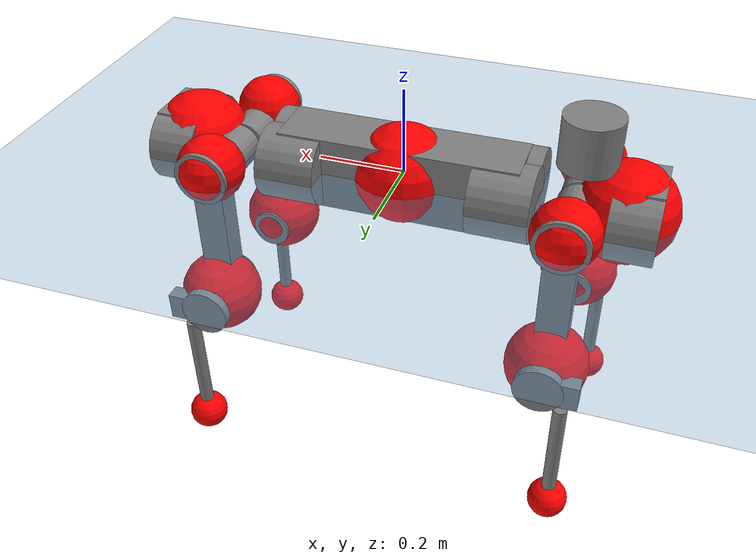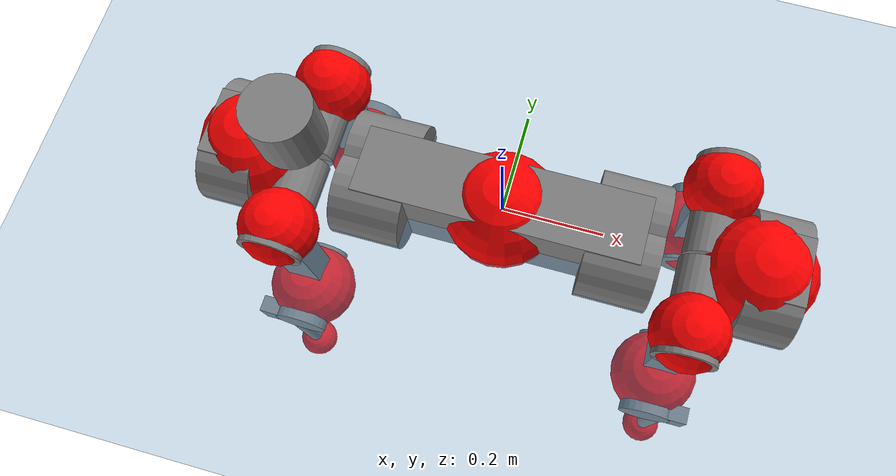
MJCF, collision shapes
<mujoco model="anymal_c">
  <compiler angle="radian" assetdir="assets" balanceinertia="true" inertiafromgeom="false"/>

  <option timestep="0.005" density="1.2" viscosity="2e-05"/>

  <size nkey="1"/>

  <visual>
    <quality shadowsize="8192"/>
    <map shadowclip="0.5"/>
  </visual>

  <default>
    <default class="/">
      <material specular="0" shininess="0.25"/>
      <geom contype="0" conaffinity="0" group="1" solref="-1000 -80"/>
      <site size="0.01 0.005 0.005" group="5"/>
      <general forcelimited="true" forcerange="-80 80" biastype="affine" gainprm="80" biasprm="0 -80 -2"/>
      <default class="anymal_c">
        <joint armature="0.01" damping="0.01" frictionloss="0.1"/>
        <default class="visual">
          <geom type="mesh" group="2"/>
          <default class="visual_zflip"/>
        </default>
        <default class="collision">
          <geom type="cylinder" group="3"/>
          <default class="foot">
            <geom size="0.03 0 0" type="sphere" condim="6" priority="1" friction="0.8 0.02 0.01" solimp="0.015 1 0.03"/>
          </default>
        </default>
      </default>
      <default class="reward_collision_sphere">
        <geom group="5" rgba="1 0 0 1"/>
      </default>
    </default>
  </default>

  <asset>
    <texture type="skybox" colorspace="auto" name="//unnamed_texture_0" builtin="gradient" rgb1="0.95 0.95 0.95" rgb2="0.95 0.95 0.95" width="100" height="600"/>
    <texture type="2d" colorspace="auto" name="texplane" builtin="checker" rgb1="0.345 0.575 0.748" rgb2="0.345 0.575 0.748" markrgb="1 1 1" width="512" height="512"/>
    <texture type="2d" colorspace="linear" name="base" file="base.png"/>
    <texture type="2d" colorspace="linear" name="top_shell" file="top_shell.png"/>
    <texture type="2d" colorspace="linear" name="bottom_shell" file="bottom_shell.png"/>
    <texture type="2d" colorspace="linear" name="remote" file="remote.png"/>
    <texture type="2d" colorspace="linear" name="hatch" file="hatch.png"/>
    <texture type="2d" colorspace="linear" name="handle" file="handle.png"/>
    <texture type="2d" colorspace="linear" name="face" file="face.png"/>
    <texture type="2d" colorspace="linear" name="battery" file="battery.png"/>
    <texture type="2d" colorspace="linear" name="lidar_cage" file="lidar_cage.png"/>
    <texture type="2d" colorspace="linear" name="depth_camera" file="depth_camera.png"/>
    <texture type="2d" colorspace="linear" name="wide_angle_camera" file="wide_angle_camera.png"/>
    <texture type="2d" colorspace="linear" name="lidar" file="lidar.png"/>
    <texture type="2d" colorspace="linear" name="drive" file="drive.png"/>
    <texture type="2d" colorspace="linear" name="hip_l" file="hip_l.png"/>
    <texture type="2d" colorspace="linear" name="shank_l" file="shank_l.png"/>
    <texture type="2d" colorspace="linear" name="foot" file="foot.png"/>
    <texture type="2d" colorspace="linear" name="thigh" file="thigh.png"/>
    <texture type="2d" colorspace="linear" name="shank_r" file="shank_r.png"/>
    <texture type="2d" colorspace="linear" name="hip_r" file="hip_r.png"/>
    <material name="MatPlane" class="/" texture="texplane" texuniform="true" texrepeat="2 2" specular="0.9" shininess="0.5"/>
    <material name="black_plastic" class="/" rgba="0.007 0.007 0.007 1"/>
    <material name="green" class="/" rgba="0.052 0.178 0.033 1"/>
    <material name="red" class="/" rgba="0.178 0.006 0.005 1"/>
    <material name="yellow" class="/" rgba="0.178 0.119 0.006 1"/>
    <material name="lwl" class="/" rgba="0.8 0.8 0.8 1"/>
    <material name="base" class="/" texture="base"/>
    <material name="top_shell" class="/" texture="top_shell"/>
    <material name="bottom_shell" class="/" texture="bottom_shell"/>
    <material name="hip_l" class="/" texture="hip_l"/>
    <material name="thigh" class="/" texture="thigh"/>
    <material name="shank_l" class="/" texture="shank_l"/>
    <material name="foot" class="/" texture="foot"/>
    <material name="hip_r" class="/" texture="hip_r"/>
    <material name="shank" class="/" texture="shank_r"/>
    <material name="hatch" class="/" texture="hatch"/>
    <material name="remote" class="/" texture="remote"/>
    <material name="handle" class="/" texture="handle"/>
    <material name="face" class="/" texture="face"/>
    <material name="depth_camera" class="/" texture="depth_camera"/>
    <material name="wide_angle_camera" class="/" texture="wide_angle_camera"/>
    <material name="battery" class="/" texture="battery"/>
    <material name="lidar_cage" class="/" texture="lidar_cage"/>
    <material name="lidar" class="/" texture="lidar"/>
    <material name="drive" class="/" texture="drive"/>
    <mesh name="base_0" class="/" file="base_0.obj"/>
    <mesh name="base_1" class="/" file="base_1.obj"/>
    <mesh name="base_2" class="/" file="base_2.obj"/>
    <mesh name="base_3" class="/" file="base_3.obj"/>
    <mesh name="base_4" class="/" file="base_4.obj"/>
    <mesh name="base_5" class="/" file="base_5.obj"/>
    <mesh name="top_shell" class="/" file="top_shell.obj"/>
    <mesh name="bottom_shell" class="/" file="bottom_shell.obj"/>
    <mesh name="remote" class="/" file="remote.obj"/>
    <mesh name="handle" class="/" file="handle.obj"/>
    <mesh name="face" class="/" file="face.obj"/>
    <mesh name="wide_angle_camera" class="/" file="wide_angle_camera.obj"/>
    <mesh name="depth_camera" class="/" file="depth_camera.obj"/>
    <mesh name="battery" class="/" file="battery.obj"/>
    <mesh name="lidar_cage" class="/" file="lidar_cage.obj"/>
    <mesh name="lidar" class="/" file="lidar.obj"/>
    <mesh name="drive" class="/" file="drive.obj"/>
    <mesh name="hip_l" class="/" file="hip_l.obj"/>
    <mesh name="thigh" class="/" file="thigh.obj"/>
    <mesh name="shank_l" class="/" file="shank_l.obj"/>
    <mesh name="foot" class="/" file="foot.obj"/>
    <mesh name="hip_r" class="/" file="hip_r.obj"/>
    <mesh name="hatch" class="/" file="hatch.obj"/>
    <mesh name="shank_r" class="/" file="shank_r.obj"/>
  </asset>

  <worldbody>
    <geom name="floor" class="/" size="100 100 0.125" type="plane" group="0" material="MatPlane"/>
    <light name="toplight_shadow" class="/" pos="0 0 5" dir="0.0990148 0.0990148 -0.990148" type="directional" ambient="0.04 0.04 0.04" diffuse="0.55 0.55 0.55" specular="0.12 0.12 0.12"/>
    <light name="toplight_fill" class="/" pos="0 0 5" dir="0.0990148 0.0990148 -0.990148" type="directional" castshadow="false" ambient="0.04 0.04 0.04" diffuse="0.3 0.3 0.3" specular="0.08 0.08 0.08"/>
    <body name="trunk" childclass="anymal_c" pos="0.000159047 -0.000375128 -0.00155342" quat="1 0.000103052 -0.000225569 -0.00013392">
      <inertial pos="0.00180304 0.000192864 0.0588362" quat="0.500488 0.508531 0.491302 0.49953" mass="16.4878" diaginertia="1.07903 0.0418907 0.415207"/>
      <joint name="//unnamed_joint_0" type="free" armature="0" damping="0" frictionloss="0"/>
      <geom name="//unnamed_geom_1" class="visual" material="green" mesh="base_0"/>
      <geom name="//unnamed_geom_2" class="visual" material="yellow" mesh="base_1"/>
      <geom name="//unnamed_geom_3" class="visual" material="red" mesh="base_2"/>
      <geom name="//unnamed_geom_4" class="visual" material="black_plastic" mesh="base_3"/>
      <geom name="//unnamed_geom_5" class="visual" material="lwl" mesh="base_4"/>
      <geom name="//unnamed_geom_6" class="visual" material="base" mesh="base_5"/>
      <geom name="trunk_1" class="collision" size="0.273602 0.0660419 0.0849111" type="box"/>
      <geom name="trunk_2" class="collision" size="0.0849111 0.0684006" pos="0.240059 0.0408133 0" quat="0.707107 0 0.707107 0"/>
      <geom name="trunk_3" class="collision" size="0.0849111 0.0684006" pos="-0.240059 0.0408133 0" quat="0.707107 0 0.707107 0"/>
      <geom name="trunk_4" class="collision" size="0.0849111 0.0684006" pos="0.240059 -0.0408133 0" quat="0.707107 0 0.707107 0"/>
      <geom name="trunk_5" class="collision" size="0.0849111 0.0684006" pos="-0.240059 -0.0408133 0" quat="0.707107 0 0.707107 0"/>
      <geom name="//unnamed_geom_12" class="visual" material="top_shell" mesh="top_shell"/>
      <geom name="//unnamed_geom_13" class="visual" material="bottom_shell" mesh="bottom_shell"/>
      <geom name="//unnamed_geom_14" class="visual" material="remote" mesh="remote"/>
      <geom name="//unnamed_geom_15" class="visual" material="handle" mesh="handle"/>
      <geom name="//unnamed_geom_16" class="visual" pos="0.457492 0 0" quat="1 0 0 0" material="face" mesh="face"/>
      <geom name="trunk_6" class="collision" size="0.0518901 0.0660419 0.0849111" pos="0.518196 0 0" type="box"/>
      <geom name="//unnamed_geom_18" class="collision" size="0.0849111 0.0518901" pos="0.518196 0.0408133 0" quat="0.707107 0 0.707107 0"/>
      <geom name="//unnamed_geom_19" class="collision" size="0.0849111 0.0518901" pos="0.518196 -0.0408133 0" quat="0.707107 0 0.707107 0"/>
      <geom name="//unnamed_geom_20" class="visual" pos="0.509534 0 -0.0336963" quat="0.965926 0 0.258819 0" material="depth_camera" mesh="depth_camera"/>
      <geom name="//unnamed_geom_21" class="visual" pos="0.566208 0 0.0171197" material="wide_angle_camera" mesh="wide_angle_camera"/>
      <geom name="//unnamed_geom_22" class="visual_zflip" pos="-0.457492 0 0" quat="0 0 0 1" material="face" mesh="face"/>
      <geom name="trunk_7" class="collision" size="0.0518901 0.0660419 0.0849111" pos="-0.518196 0 0" quat="0 0 0 1" type="box"/>
      <geom name="//unnamed_geom_24" class="collision" size="0.0849111 0.0518901" pos="-0.518196 -0.0408133 0" quat="0 -0.707107 0 0.707107"/>
      <geom name="//unnamed_geom_25" class="collision" size="0.0849111 0.0518901" pos="-0.518196 0.0408133 0" quat="0 -0.707107 0 0.707107"/>
      <geom name="//unnamed_geom_26" class="visual" pos="-0.509534 0 -0.0336963" quat="0 -0.258819 0 0.965926" material="depth_camera" mesh="depth_camera"/>
      <geom name="//unnamed_geom_27" class="visual_zflip" pos="-0.566208 0 0.0171197" quat="0 0 0 1" material="wide_angle_camera" mesh="wide_angle_camera"/>
      <geom name="//unnamed_geom_28" class="visual" material="battery" mesh="battery"/>
      <geom name="//unnamed_geom_29" class="visual" pos="0 0.0377492 0.0329185" quat="0.683013 -0.183013 0.183013 0.683013" material="depth_camera" mesh="depth_camera"/>
      <geom name="//unnamed_geom_30" class="visual" pos="0 -0.0377492 0.0329185" quat="0.683013 0.183013 0.183013 -0.683013" material="depth_camera" mesh="depth_camera"/>
      <geom name="//unnamed_geom_31" class="visual" pos="-0.401754 0 0.0840547" quat="1 0 0 0" material="lidar_cage" mesh="lidar_cage"/>
      <geom name="trunk_8" class="collision" size="0.0660419 0.0566074" pos="-0.401754 0 0.152671"/>
      <geom name="//unnamed_geom_33" class="visual" pos="-0.401754 -0.000204558 0.16262" quat="0.707107 0 0 -0.707107" material="lidar" mesh="lidar"/>
      <geom name="//unnamed_geom_34" class="visual" pos="0.331005 0.0608361 -9.66962e-09" quat="0.258819 0.965926 0 0" material="drive" mesh="drive"/>
      <geom name="//unnamed_geom_35" class="visual" pos="0.331005 -0.0608361 9.66962e-09" quat="0.258819 -0.965926 0 0" material="drive" mesh="drive"/>
      <geom name="//unnamed_geom_36" class="visual" pos="-0.331005 0.0608361 9.66962e-09" quat="0 0 0.965926 -0.258819" material="drive" mesh="drive"/>
      <geom name="//unnamed_geom_37" class="visual" pos="-0.331005 -0.0608361 -9.66962e-09" quat="0 0 -0.965926 -0.258819" material="drive" mesh="drive"/>
      <geom name="//unnamed_geom_38" class="visual" pos="0.128031 0 0.0834829" quat="1 0 0 0" material="hatch" mesh="hatch"/>
      <geom name="//unnamed_geom_39" class="reward_collision_sphere" size="0.113215"/>
      <geom name="//unnamed_geom_40" class="reward_collision_sphere" size="0.113215" pos="0.496674 0 0"/>
      <geom name="//unnamed_geom_41" class="reward_collision_sphere" size="0.113215" pos="-0.496674 0 0"/>
      <site name="imu" pos="0.28406 -0.000279578 0.0519762" size="0.00943456"/>
      <camera name="track" pos="0 -1.16609 0" quat="0.707107 0.707107 0 0" mode="trackcom"/>
      <camera name="ego_camera" pos="0.496674 0 -0.0457441" quat="-0.5 -0.5 0.5 0.5"/>
      <body name="LF_HIP" pos="0.332886 0.0589473 0.00019794" quat="0.259238 0.965813 -0.000845751 0.000914134">
        <inertial pos="0.0621871 -0.0112384 -0.00902923" quat="-0.125135 0.717231 -0.132419 0.672596" mass="2.37484" diaginertia="0.00979207 0.000338048 0.00671151"/>
        <joint name="LF_HAA" pos="0 0 0" axis="0.999976 -0.00476964 -0.00508298" range="-0.715179 0.535233" armature="0.00887272" damping="0.016454" frictionloss="0.0864524"/>
        <geom name="//unnamed_geom_42" class="visual" pos="0 -0.00056882 9.34282e-05" quat="0.258819 -0.965926 0 0" material="hip_l" mesh="hip_l"/>
        <geom name="//unnamed_geom_43" class="visual" pos="0.0661128 -0.0734534 -0.0465545" quat="0.183013 -0.683013 0.683013 0.183013" material="drive" mesh="drive"/>
        <geom name="//unnamed_geom_44" class="collision" size="0.0471728 0.0660419" pos="0.0661128 -0.00697313 -0.00789657" quat="-0.353553 -0.612372 0.612372 -0.353553"/>
        <body name="LF_THIGH" pos="0.0665429 -0.044109 -0.0479472" quat="0.182932 -0.683027 0.682987 0.183136">
          <inertial pos="0.0370488 -0.000407494 -0.281537" quat="0.994112 0.00338663 -0.0767378 0.0764245" mass="2.63311" diaginertia="0.0496943 0.00200865 0.00798726"/>
          <joint name="LF_HFE" pos="0 0 0" axis="0.99997 0.00387959 0.00674347" stiffness="0.011451" range="-3.19494 3.17339" armature="0.0100369" damping="0" frictionloss="0.0952576"/>
          <geom name="//unnamed_geom_45" class="visual" pos="0.0103593 1.63239e-05 0" quat="0.707107 0 0 -0.707107" material="thigh" mesh="thigh"/>
          <geom name="//unnamed_geom_46" class="collision" size="0.0613247 0.0377382" pos="0.0441488 0 0" quat="0.5 0.5 -0.5 -0.5"/>
          <geom name="//unnamed_geom_47" class="collision" size="0.0353796 0.0283037 0.133324" pos="0.0331116 0 -0.161607" quat="0.707107 0 0 -0.707107" type="box"/>
          <geom name="//unnamed_geom_48" class="visual" pos="0.110703 0 -0.325926" quat="1 0 0 0" material="drive" mesh="drive"/>
          <geom name="//unnamed_geom_49" class="collision" size="0.0471728 0.0660419" pos="0.0334427 0 -0.325926" quat="0.707107 0 0.707107 0"/>
          <geom name="//unnamed_geom_50" class="reward_collision_sphere" size="0.0754765" pos="0.027593 0 0"/>
          <body name="LF_SHANK" pos="0.111515 -0.000591011 -0.324206" quat="1 4.04556e-05 0.000224972 0.000229389">
            <inertial pos="0.00401453 -0.0354312 -0.0944421" quat="0.992038 -0.120654 -0.00138613 -0.0360683" mass="0.483714" diaginertia="0.01609 0.000623473 0.00207022"/>
            <joint name="LF_KFE" pos="0 0 0" axis="0.999922 0.000674632 -0.0124762" range="-3.17547 3.19184" armature="0.0106249" damping="0.00611925" frictionloss="0.103613"/>
            <geom name="//unnamed_geom_51" class="visual" pos="0.00337795 0.0180114 0" quat="0.707107 0 0 -0.707107" material="shank_l" mesh="shank_l"/>
            <geom name="LF_kfe_act" class="collision" size="0.0566074 0.0188691" pos="0.0220744 0 0" quat="0.5 0.5 -0.5 -0.5"/>
            <geom name="//unnamed_geom_53" class="collision" size="0.0542478 0.0318416 0.0179257" pos="0.0220744 -0.0335246 0" quat="0.5 0.5 -0.5 -0.5" type="box"/>
            <geom name="//unnamed_geom_54" class="visual" pos="0.0144027 -0.0454747 -0.386503" quat="0.382683 0 0 -0.92388" material="foot" mesh="foot"/>
            <geom name="LF_calf" class="collision" size="0.0165105 0.133265" pos="0.0144035 -0.051279 -0.193252" quat="0.707107 0 0 -0.707107"/>
            <geom name="LF_foot" class="foot" size="0.0245326" pos="0.0144035 -0.051279 -0.360772" quat="0.707107 0 0 -0.707107"/>
            <geom name="//unnamed_geom_57" class="reward_collision_sphere" size="0.0943456" pos="-0.055186 0 0"/>
            <geom name="//unnamed_geom_58" class="reward_collision_sphere" size="0.0471728" pos="0.0144035 -0.051279 -0.360772"/>
            <site name="LF_foot" class="foot" pos="0.0144035 -0.051279 -0.360772" quat="0.707107 0 0 -0.707107" size="0.00943456"/>
          </body>
        </body>
      </body>
      <body name="RF_HIP" pos="0.329517 -0.059247 -0.000394367" quat="0.259393 -0.965772 -8.43766e-05 -0.000716972">
        <inertial pos="0.0625716 0.00917048 -0.00966501" quat="0.135826 0.675787 0.128772 0.712939" mass="2.32498" diaginertia="0.0095078 0.000349629 0.00663327"/>
        <joint name="RF_HAA" pos="0 0 0" axis="0.999883 -0.00162162 0.0152386" range="-0.480177 0.747667" armature="0.00952834" damping="0.0142262" frictionloss="0.0957067"/>
        <geom name="//unnamed_geom_59" class="visual" pos="0 0.000568816 9.3428e-05" quat="0.258819 0.965926 0 0" material="hip_r" mesh="hip_r"/>
        <geom name="//unnamed_geom_60" class="visual" pos="0.0661128 0.0734534 -0.0465545" quat="0.183013 0.683013 0.683013 -0.183013" material="drive" mesh="drive"/>
        <geom name="//unnamed_geom_61" class="collision" size="0.0471728 0.0660419" pos="0.0661128 0.00697313 -0.00789657" quat="-0.353553 0.612372 0.612372 0.353553"/>
        <body name="RF_THIGH" pos="0.0637557 0.0412197 -0.050568" quat="0.182275 0.683615 0.682424 -0.183695">
          <inertial pos="0.0338179 0.00126557 -0.281121" quat="0.992767 -0.00532065 -0.080816 0.0886231" mass="2.57979" diaginertia="0.0490852 0.00203758 0.00835"/>
          <joint name="RF_HFE" pos="0 0 0" axis="1 -0.000669343 0.000220417" stiffness="0.00827359" range="-3.17703 3.17616" armature="0.00936004" damping="0.000668503" frictionloss="0.0814505"/>
          <geom name="//unnamed_geom_62" class="visual" pos="0.0103593 1.63239e-05 0" quat="0.707107 0 0 -0.707107" material="thigh" mesh="thigh"/>
          <geom name="//unnamed_geom_63" class="collision" size="0.0613247 0.0377382" pos="0.0441488 0 0" quat="0.5 0.5 0.5 0.5"/>
          <geom name="//unnamed_geom_64" class="collision" size="0.0353796 0.0283037 0.133324" pos="0.0331116 0 -0.161607" quat="0.707107 0 0 0.707107" type="box"/>
          <geom name="//unnamed_geom_65" class="visual" pos="0.110703 0 -0.325926" quat="1 0 0 0" material="drive" mesh="drive"/>
          <geom name="//unnamed_geom_66" class="collision" size="0.0471728 0.0660419" pos="0.0334427 0 -0.325926" quat="0.707107 0 0.707107 0"/>
          <geom name="//unnamed_geom_67" class="reward_collision_sphere" size="0.0754765" pos="0.027593 0 0"/>
          <body name="RF_SHANK" pos="0.109964 0.00104628 -0.322776" quat="1 -0.000145768 8.8564e-05 9.7325e-05">
            <inertial pos="0.00693927 0.0362784 -0.0929748" quat="0.992648 0.117297 -0.0120182 0.0273428" mass="0.483586" diaginertia="0.0168895 0.000613525 0.002163"/>
            <joint name="RF_KFE" pos="0 0 0" axis="0.999885 -0.0137813 0.00633754" range="-3.18093 3.17637" armature="0.00820643" damping="0.0116563" frictionloss="0.100904"/>
            <geom name="//unnamed_geom_68" class="visual" pos="0.00337793 -0.0180114 0" quat="0.707107 0 0 0.707107" material="shank" mesh="shank_r"/>
            <geom name="RF_kfe_act" class="collision" size="0.0566074 0.0188691" pos="0.0220744 0 0" quat="0.5 0.5 0.5 0.5"/>
            <geom name="//unnamed_geom_70" class="collision" size="0.0542478 0.0318416 0.0179257" pos="0.0220744 0.0335246 0" quat="0.5 0.5 0.5 0.5" type="box"/>
            <geom name="//unnamed_geom_71" class="visual" pos="0.0144044 0.0454747 -0.386503" quat="0.382683 0 0 0.92388" material="foot" mesh="foot"/>
            <geom name="RF_calf" class="collision" size="0.0165105 0.133265" pos="0.0144035 0.051279 -0.193252" quat="0.707107 0 0 0.707107"/>
            <geom name="RF_foot" class="foot" size="0.0311519" pos="0.0144035 0.051279 -0.360772" quat="0.707107 0 0 0.707107"/>
            <geom name="//unnamed_geom_74" class="reward_collision_sphere" size="0.0943456" pos="-0.055186 0 0"/>
            <geom name="//unnamed_geom_75" class="reward_collision_sphere" size="0.0471728" pos="0.0144035 0.051279 -0.360772"/>
            <site name="RF_foot" class="foot" pos="0.0144035 0.051279 -0.360772" quat="0.707107 0 0 0.707107" size="0.00943456"/>
          </body>
        </body>
      </body>
      <body name="LH_HIP" pos="-0.329259 0.0636336 0.000637512" quat="0.000361862 0.00128455 0.965899 -0.258916">
        <inertial pos="0.0653353 0.00822541 -0.0100905" quat="0.136824 0.673721 0.121425 0.715985" mass="2.36267" diaginertia="0.00925159 0.00032453 0.00643564"/>
        <joint name="LH_HAA" pos="0 0 0" axis="0.999884 0.0101783 0.0113395" range="-0.440418 0.776026" armature="0.00963196" damping="0" frictionloss="0.0978111"/>
        <geom name="//unnamed_geom_76" class="visual" pos="0 0.000568816 9.3428e-05" quat="-0.258819 -0.965926 0 0" material="hip_r" mesh="hip_r"/>
        <geom name="//unnamed_geom_77" class="visual" pos="0.0661128 0.0734534 -0.0465545" quat="0.183013 0.683013 0.683013 -0.183013" material="drive" mesh="drive"/>
        <geom name="//unnamed_geom_78" class="collision" size="0.0471728 0.0660419" pos="0.0661128 0.00697313 -0.00789657" quat="-0.353553 0.612372 0.612372 0.353553"/>
        <body name="LH_THIGH" pos="0.063908 0.0447938 -0.05107" quat="0.182982 0.683048 0.683041 -0.182807">
          <inertial pos="0.033969 0.000552615 -0.282016" quat="0.992769 -0.00508968 -0.0806958 0.0887236" mass="2.56848" diaginertia="0.049127 0.00195309 0.00841323"/>
          <joint name="LH_HFE" pos="0 0 0" axis="0.999999 0.00061316 -0.00149467" stiffness="0.00584641" range="-3.14606 3.12897" armature="0.00824407" damping="0" frictionloss="0.107131"/>
          <geom name="//unnamed_geom_79" class="visual" pos="0.0103593 1.63239e-05 0" quat="0.707107 0 0 -0.707107" material="thigh" mesh="thigh"/>
          <geom name="//unnamed_geom_80" class="collision" size="0.0613247 0.0377382" pos="0.0441488 0 0" quat="0.5 0.5 -0.5 -0.5"/>
          <geom name="//unnamed_geom_81" class="collision" size="0.0353796 0.0283037 0.133324" pos="0.0331116 0 -0.161607" quat="0.707107 0 0 -0.707107" type="box"/>
          <geom name="//unnamed_geom_82" class="visual" pos="0.110703 0 -0.325926" quat="1 0 0 0" material="drive" mesh="drive"/>
          <geom name="//unnamed_geom_83" class="collision" size="0.0471728 0.0660419" pos="0.0334427 0 -0.325926" quat="0.707107 0 0.707107 0"/>
          <geom name="//unnamed_geom_84" class="reward_collision_sphere" size="0.0754765" pos="0.027593 0 0"/>
          <body name="LH_SHANK" pos="0.108879 -0.00129413 -0.328834" quat="0.999999 0.000881734 0.00029214 -0.00116311">
            <inertial pos="0.00620403 0.0356747 -0.0916825" quat="0.992393 0.119166 -0.0134465 0.0278382" mass="0.492873" diaginertia="0.0164966 0.000624956 0.00223128"/>
            <joint name="LH_KFE" pos="0 0 0" axis="0.999968 -0.00771982 0.00188058" range="-3.12573 3.13259" armature="0.00902629" damping="0.0147291" frictionloss="0.102991"/>
            <geom name="//unnamed_geom_85" class="visual" pos="0.00337793 -0.0180114 0" quat="-0.707107 0 0 -0.707107" material="shank" mesh="shank_r"/>
            <geom name="LH_kfe_act" class="collision" size="0.0566074 0.0188691" pos="0.0220744 0 0" quat="0.5 0.5 -0.5 -0.5"/>
            <geom name="//unnamed_geom_87" class="collision" size="0.0542478 0.0318416 0.0179257" pos="0.0220744 0.0335246 0" quat="0.5 0.5 -0.5 -0.5" type="box"/>
            <geom name="//unnamed_geom_88" class="visual" pos="0.0144044 0.0454747 -0.386503" quat="-0.382683 0 0 -0.92388" material="foot" mesh="foot"/>
            <geom name="LH_calf" class="collision" size="0.0165105 0.133265" pos="0.0144035 0.051279 -0.193252" quat="0.707107 0 0 -0.707107"/>
            <geom name="LH_foot" class="foot" size="0.0249259" pos="0.0144035 0.051279 -0.360772" quat="0.707107 0 0 -0.707107"/>
            <geom name="//unnamed_geom_91" class="reward_collision_sphere" size="0.0943456" pos="-0.055186 0 0"/>
            <geom name="//unnamed_geom_92" class="reward_collision_sphere" size="0.0471728" pos="0.0144035 0.051279 -0.360772"/>
            <site name="LH_foot" class="foot" pos="0.0144035 0.051279 -0.360772" quat="0.707107 0 0 -0.707107" size="0.00943456"/>
          </body>
        </body>
      </body>
      <body name="RH_HIP" pos="-0.331717 -0.0604698 -0.00237531" quat="-0.000292952 -0.000115464 -0.965883 -0.258978">
        <inertial pos="0.063314 -0.00814934 -0.00953017" quat="-0.119387 0.715978 -0.137749 0.673905" mass="2.25492" diaginertia="0.00922787 0.000321225 0.0063428"/>
        <joint name="RH_HAA" pos="0 0 0" axis="1 1.29382e-05 2.37511e-05" range="-0.727891 0.457675" armature="0.0095853" damping="0.0023912" frictionloss="0.0937807"/>
        <geom name="//unnamed_geom_93" class="visual" pos="0 -0.00056882 9.34282e-05" quat="-0.258819 0.965926 0 0" material="hip_l" mesh="hip_l"/>
        <geom name="//unnamed_geom_94" class="visual" pos="0.0661128 -0.0734534 -0.0465545" quat="-0.183013 0.683013 -0.683013 -0.183013" material="drive" mesh="drive"/>
        <geom name="//unnamed_geom_95" class="collision" size="0.0471728 0.0660419" pos="0.0661128 -0.00697313 -0.00789657" quat="0.353553 0.612372 -0.612372 0.353553"/>
        <body name="RH_THIGH" pos="0.0660137 -0.0453749 -0.0491607" quat="-0.183149 0.683258 -0.682613 -0.183449">
          <inertial pos="0.0356838 -0.00233967 -0.27942" quat="0.993216 -0.00431257 -0.0805161 0.0837838" mass="2.70559" diaginertia="0.0509074 0.00205238 0.00863882"/>
          <joint name="RH_HFE" pos="0 0 0" axis="1 -0.000122497 -5.16178e-05" range="-3.14678 3.13943" armature="0.00813165" damping="0" frictionloss="0.092902"/>
          <geom name="//unnamed_geom_96" class="visual" pos="0.0103593 1.63239e-05 0" quat="0.707107 0 0 -0.707107" material="thigh" mesh="thigh"/>
          <geom name="//unnamed_geom_97" class="collision" size="0.0613247 0.0377382" pos="0.0441488 0 0" quat="0.5 0.5 0.5 0.5"/>
          <geom name="//unnamed_geom_98" class="collision" size="0.0353796 0.0283037 0.133324" pos="0.0331116 0 -0.161607" quat="0.707107 0 0 0.707107" type="box"/>
          <geom name="//unnamed_geom_99" class="visual" pos="0.110703 0 -0.325926" quat="1 0 0 0" material="drive" mesh="drive"/>
          <geom name="//unnamed_geom_100" class="collision" size="0.0471728 0.0660419" pos="0.0334427 0 -0.325926" quat="0.707107 0 0.707107 0"/>
          <geom name="//unnamed_geom_101" class="reward_collision_sphere" size="0.0754765" pos="0.027593 0 0"/>
          <body name="RH_SHANK" pos="0.111478 -0.0018396 -0.323586" quat="0.999999 -0.000881639 -0.000574132 -0.000756099">
            <inertial pos="0.00350044 -0.0358824 -0.0926393" quat="0.992843 -0.116399 -0.000519327 -0.026711" mass="0.497899" diaginertia="0.0161512 0.000625537 0.00216678"/>
            <joint name="RH_KFE" pos="0 0 0" axis="0.999994 0.00288972 -0.00185515" stiffness="0.000403034" range="-3.14694 3.08312" armature="0.0101046" damping="0.0193778" frictionloss="0.0933169"/>
            <geom name="//unnamed_geom_102" class="visual" pos="0.00337795 0.0180114 0" quat="0.707107 0 0 -0.707107" material="shank_l" mesh="shank_l"/>
            <geom name="RH_kfe_act" class="collision" size="0.0566074 0.0188691" pos="0.0220744 0 0" quat="0.5 0.5 0.5 0.5"/>
            <geom name="//unnamed_geom_104" class="collision" size="0.0542478 0.0318416 0.0179257" pos="0.0220744 -0.0335246 0" quat="0.5 0.5 0.5 0.5" type="box"/>
            <geom name="//unnamed_geom_105" class="visual" pos="0.0144027 -0.0454747 -0.386503" quat="0.382683 0 0 -0.92388" material="foot" mesh="foot"/>
            <geom name="RH_calf" class="collision" size="0.0165105 0.133265" pos="0.0144035 -0.051279 -0.193252" quat="0.707107 0 0 0.707107"/>
            <geom name="RH_foot" class="foot" size="0.025972" pos="0.0144035 -0.051279 -0.360772" quat="0.707107 0 0 0.707107"/>
            <geom name="//unnamed_geom_108" class="reward_collision_sphere" size="0.0943456" pos="-0.055186 0 0"/>
            <geom name="//unnamed_geom_109" class="reward_collision_sphere" size="0.0471728" pos="0.0144035 -0.051279 -0.360772"/>
            <site name="RH_foot" class="foot" pos="0.0144035 -0.051279 -0.360772" quat="0.707107 0 0 0.707107" size="0.00943456"/>
          </body>
        </body>
      </body>
    </body>
  </worldbody>

  <contact>
    <pair class="/" geom1="floor" geom2="LF_foot" name="//unnamed_contact_0"/>
    <pair class="/" geom1="floor" geom2="RF_foot" name="//unnamed_contact_1"/>
    <pair class="/" geom1="floor" geom2="LH_foot" name="//unnamed_contact_2"/>
    <pair class="/" geom1="floor" geom2="RH_foot" name="//unnamed_contact_3"/>
  </contact>

  <actuator>
    <general name="LF_HAA" class="/" joint="LF_HAA" forcerange="-73.2401 73.2401" gainprm="64.1411" biasprm="0 -64.1411 -1.7759"/>
    <general name="LF_HFE" class="/" joint="LF_HFE" forcerange="-68.9162 68.9162" gainprm="64.1411" biasprm="0 -64.1411 -1.7759"/>
    <general name="LF_KFE" class="/" joint="LF_KFE" forcerange="-71.3565 71.3565" gainprm="64.1411" biasprm="0 -64.1411 -1.7759"/>
    <general name="RF_HAA" class="/" joint="RF_HAA" forcerange="-70.3944 70.3944" gainprm="64.1411" biasprm="0 -64.1411 -1.7759"/>
    <general name="RF_HFE" class="/" joint="RF_HFE" forcerange="-84.8423 84.8423" gainprm="64.1411" biasprm="0 -64.1411 -1.7759"/>
    <general name="RF_KFE" class="/" joint="RF_KFE" forcerange="-75.5883 75.5883" gainprm="64.1411" biasprm="0 -64.1411 -1.7759"/>
    <general name="LH_HAA" class="/" joint="LH_HAA" forcerange="-76.2533 76.2533" gainprm="64.1411" biasprm="0 -64.1411 -1.7759"/>
    <general name="LH_HFE" class="/" joint="LH_HFE" forcerange="-75.9981 75.9981" gainprm="64.1411" biasprm="0 -64.1411 -1.7759"/>
    <general name="LH_KFE" class="/" joint="LH_KFE" forcerange="-73.2504 73.2504" gainprm="64.1411" biasprm="0 -64.1411 -1.7759"/>
    <general name="RH_HAA" class="/" joint="RH_HAA" forcerange="-68.8807 68.8807" gainprm="64.1411" biasprm="0 -64.1411 -1.7759"/>
    <general name="RH_HFE" class="/" joint="RH_HFE" forcerange="-79.5692 79.5692" gainprm="64.1411" biasprm="0 -64.1411 -1.7759"/>
    <general name="RH_KFE" class="/" joint="RH_KFE" forcerange="-76.927 76.927" gainprm="64.1411" biasprm="0 -64.1411 -1.7759"/>
  </actuator>

  <sensor>
    <gyro site="imu" name="imu_angular_velocity"/>
    <velocimeter site="imu" name="imu_linear_velocity"/>
    <framelinvel objtype="site" objname="LF_foot" name="LF_foot_global_linear_velocity"/>
    <framelinvel objtype="site" objname="RF_foot" name="RF_foot_global_linear_velocity"/>
    <framelinvel objtype="site" objname="LH_foot" name="LH_foot_global_linear_velocity"/>
    <framelinvel objtype="site" objname="RH_foot" name="RH_foot_global_linear_velocity"/>
  </sensor>

  <keyframe>
    <key name="home" qpos="0 0 0.55 1 0 0 0 0 0.4 -0.8 0 -0.4 0.8 0 -0.4 0.8 0 0.4 -0.8"/>
  </keyframe>
</mujoco>
